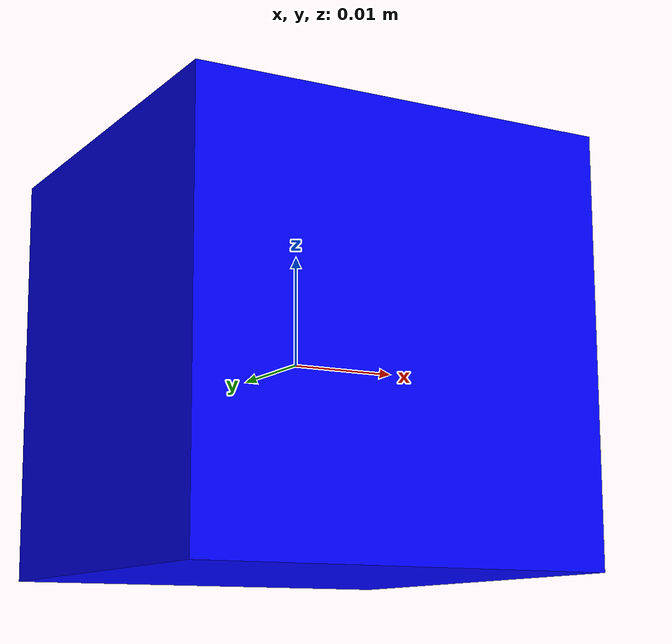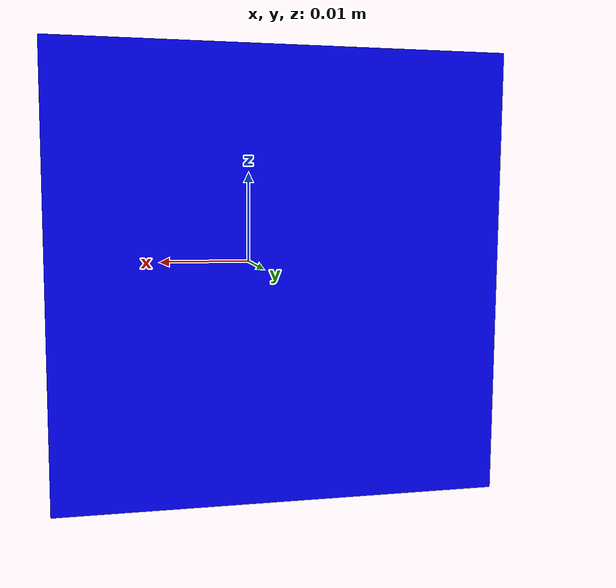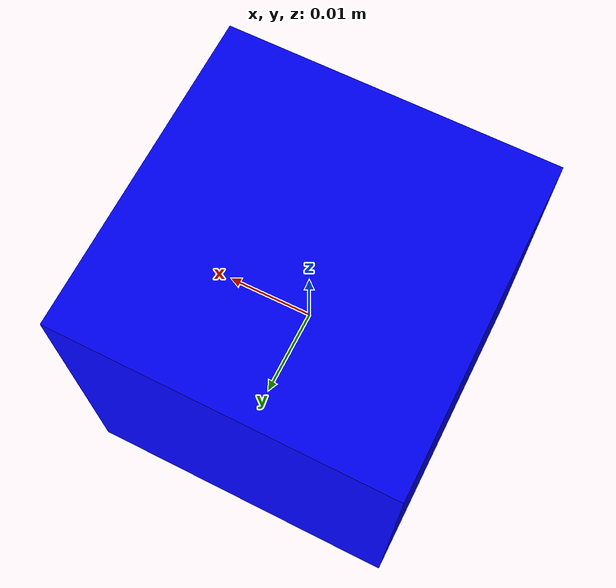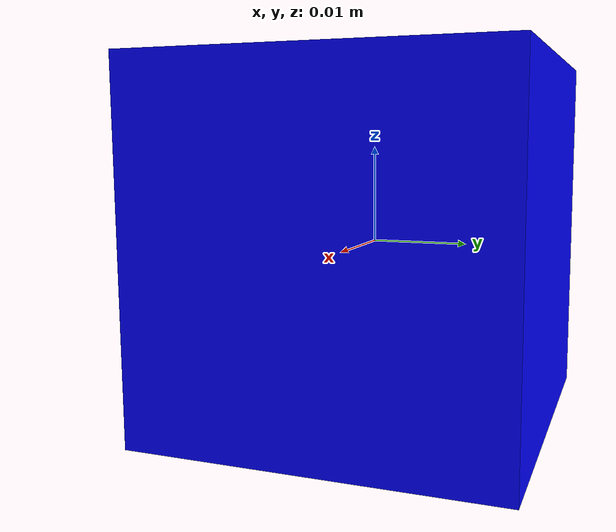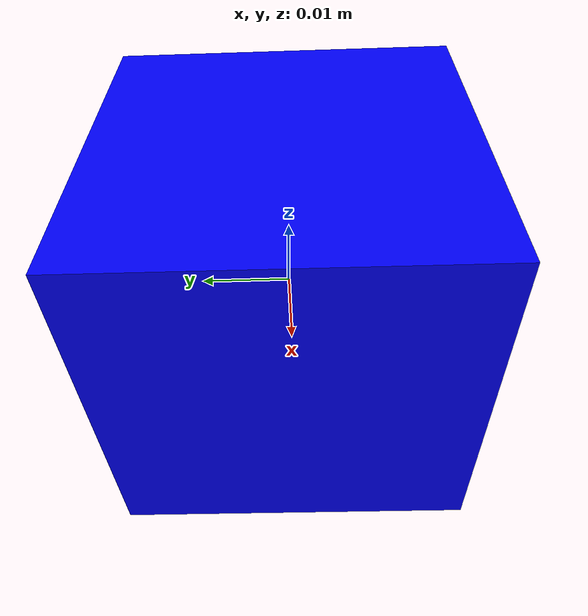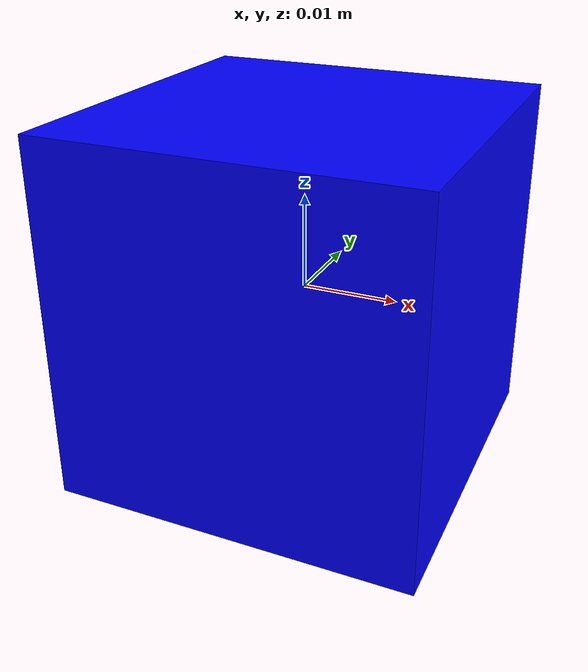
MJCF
<mujoco model="cube">
    <compiler texturedir="." angle="radian" autolimits="true" />
    <option impratio="10" />
    <default>
        <default class="visual">
            <geom  material="material" type="mesh" contype="0" conaffinity="0" group="2" />
        </default>
        <default class="collision">
            <geom type="mesh" group="3" />
        </default>
    </default>

    <asset>
        <texture name="apple" file="textures/wood1.png"/>
        <material name="red" rgba="0 0 1 1" reflectance="0" specular="0.0" shininess="0" />
    </asset>

    <worldbody>
        <body name="cube" pos="0.0 0.0 0.0" euler="0 0 0">
            <!-- bottom -->
            <geom size="0.019 0.019 0.019" class="visual" type="box" friction= "1.0 0.1 0.000" pos="0 0 -0.0"
                material="red" />

            <!-- bottom -->
            <geom size="0.019 0.019 0.019" class="collision" type="box" mass= "0.1"  pos="0 0 -0.01" />
            <site name="reference_site" pos="0 0. 0." euler="0 0 0" group="4"/>
        </body>
    </worldbody>
</mujoco>
